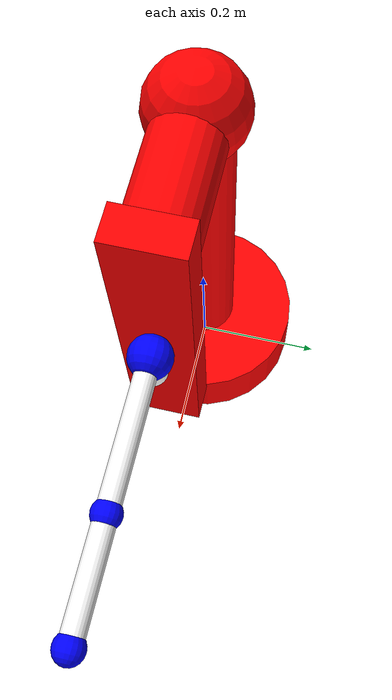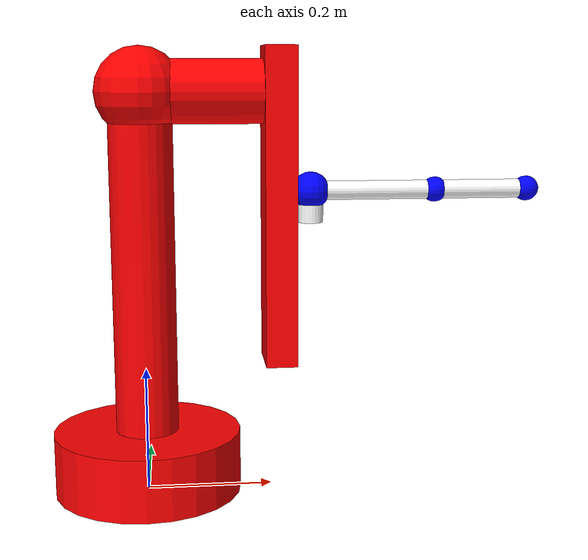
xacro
<?xml version="1.0" ?>
<robot name="dog_leg" xmlns:xacro="http://www.ros.org/wiki/xacro">

    <!-- property of robot -->
    <xacro:property name="under_base_length" value="0.1"/>
    <xacro:property name="under_base_radius" value="0.15"/>

        <!-- property of robot -->
    <xacro:property name="link_1_length" value="0.6"/>
    <xacro:property name="link_1_radius" value="0.05"/>

        <!-- property of robot -->
    <xacro:property name="link_2_radius" value="0.07"/>

            <!-- property of robot -->
    <xacro:property name="link_3_length" value="0.2"/>
    <xacro:property name="link_3_radius" value="0.05"/>

                <!-- property of robot -->
    <xacro:property name="link_4_x" value="0.05"/>
    <xacro:property name="link_4_y" value="0.1"/>
    <xacro:property name="link_4_z" value="0.5"/>

                <!-- property of robot -->
    <xacro:property name="leg_base_length" value="0.05"/>
    <xacro:property name="leg_base_radius" value="0.02"/>

                    <!-- property of robot -->
    <xacro:property name="j_leg_01_radius" value="0.03"/>
    <xacro:property name="j_leg_02_radius" value="0.02"/>

    <xacro:property name="leg1_h" value="0.20"/>
    <xacro:property name="leg2_h" value="0.15"/>
    <xacro:property name="leg_r" value="0.015"/>
    <!-- something -->
    <xacro:property name = "effort" value = "300"/>
    <xacro:property name = "velocity" value = "0.5"/>
    <xacro:property name = "lower" value = "-3.14"/>
    <xacro:property name = "upper" value = "3.14"/>

    <link name="dummy">

    </link>
    <joint name="dummy_base" type = "fixed">
	    <parent link="dummy"/>
	    <child link = "under_base"/>

    </joint>
    <link name="under_base">
        <inertial>
            <origin xyz="0.0 0.0 0.0" rpy="0.0 0.0 0.0"/>
            <mass value="1"/>
            <inertia ixx="0.15" ixy="0.0" ixz="0.0" iyy="0.15" iyz="0.0" izz="0.125"/>
        </inertial>
        <visual name="visual">
            <origin xyz="0.0 0.0 ${under_base_length/2}" rpy="0.0 0.0 0.0"/>
            <geometry>
                <cylinder radius="${under_base_radius}" length="${under_base_length}"/>
            </geometry>
            <material name="">
                <color rgba="1.0 0.0 0.0 1.0"/>
            </material>
        </visual>
        <collision>
            <origin xyz="0.0 0.0 ${under_base_length/2}" rpy="0.0 0.0 0.0"/>
            <geometry>
                <cylinder radius="${under_base_radius}" length="${under_base_length}"/>
            </geometry>
        </collision>
    </link>
    <link name="link_1">
        <inertial>
            <origin xyz="0.0 0.0 0.0" rpy="0.0 0.0 0.0"/>
            <mass value="1"/>
            <inertia ixx="0.15" ixy="0.0" ixz="0.0" iyy="0.15" iyz="0.0" izz="0.125"/>
        </inertial>
        <visual name="visual">
            <origin xyz="0.0 0.0 0" rpy="0.0 0.0 0.0"/>
            <geometry>
                <cylinder radius="${link_1_radius}" length="${link_1_length}"/>
            </geometry>
            <material name="">
                <color rgba="1.0 0.0 0.0 1.0"/>
            </material>
        </visual>
        <collision>
            <origin xyz="0.0 0.0 0.0" rpy="0.0 0.0 0.0"/>
            <geometry>
                <cylinder radius="${link_1_radius}" length="${link_1_length}"/>
            </geometry>
        </collision>
    </link>

    <link name="link_2">
        <inertial>
            <origin xyz="0.0 0.0 0.0" rpy="0.0 0.0 0.0"/>
            <mass value="1"/>
            <inertia ixx="0.1" ixy="0.0" ixz="0.0" iyy="0.1" iyz="0.0" izz="0.1"/>
        </inertial>
        <visual name="">
            <origin xyz="0.0 0.0 0.0" rpy="0.0 0.0 0.0"/>
            <geometry>
            <sphere radius="${link_2_radius}"/>
            </geometry>
            <material name="">
                <color rgba="1.0 0.0 0.0 1.0"/>
            </material>
        </visual>
        <collision>
            <origin xyz="0.0 0.0 0.0" rpy="0.0 0.0 0.0"/>
            <geometry>
                <box size="0.0 0.0 0.0"/>
            </geometry>
        </collision>
    </link>

    <link name="link_3">
        <inertial>
            <origin xyz="0.0 0.0 0.0" rpy="0.0 0.0 0.0"/>
            <mass value="1"/>
            <inertia ixx="0.15" ixy="0.0" ixz="0.0" iyy="0.15" iyz="0.0" izz="0.125"/>
        </inertial>
        <visual name="">
            <origin xyz="0.0 0.0 0.0" rpy="0.0 0.0 0.0"/>
            <geometry>
                <cylinder radius="${link_3_radius}" length="${link_3_length}"/>
            </geometry>
            <material name="">1.0
                <color rgba="1.0 0.0 0.0 1.0"/>
            </material>
        </visual>
        <collision>
            <origin xyz="0.0 0.0 0.0" rpy="0.0 0.0 0.0"/>
            <geometry>
                <cylinder radius="${link_3_radius}" length="${link_3_length}"/>
            </geometry>
        </collision>
    </link>

    <link name="link_4">
        <inertial>
            <origin xyz="0.0 0.0 0.0" rpy="0.0 0.0 0.0"/>
            <mass value="0.0"/>
            <inertia ixx="0.166667" ixy="0.0" ixz="0.0" iyy="0.166667" iyz="0.0" izz="0.166667"/>
        </inertial>
        <visual name="">
            <origin xyz="0.0 0.0 0.0" rpy="0.0 0.0 0.0"/>
            <geometry>
                <box size="${link_4_x} ${link_4_y} ${link_4_z}"/>
            </geometry>
            <material name="">
                <color rgba="1.0 0.0 0.0 1.0"/>
            </material>
        </visual>
        <collision>
            <origin xyz="0.0 0.0 0.0" rpy="0.0 0.0 0.0"/>
            <geometry>
                <box size="${link_4_x} ${link_4_y} ${link_4_z}"/>
            </geometry>
        </collision>
    </link>

    <link name="leg_base">
        <inertial>
            <origin xyz="0.0 0.0 0.0" rpy="0.0 1.5707 0.0"/>
            <mass value="1.0"/>
            <inertia ixx="0.0" ixy="0.0" ixz="0.0" iyy="0.0" iyz="0.0" izz="0.0"/>
        </inertial>
        <visual name="">
            <origin xyz="0.0 0.0 0.0" rpy="0.0 1.5707 0.0"/>
            <geometry>
                <cylinder radius="${leg_base_radius}" length="${leg_base_length}"/>
            </geometry>
            <material name="">
                <color rgba="1.0 1.0 1.0 1.0"/>
            </material>
        </visual>
        <collision>
            <origin xyz="0.0 0.0 0.0" rpy="0.0 1.5707 0.0"/>
            <geometry>
                <cylinder radius="${leg_base_radius}" length="${leg_base_length}"/>
            </geometry>
        </collision>
    </link>

    <link name="j_leg_01">
        <inertial>
            <origin xyz="0.0 0.0 0.0" rpy="0.0 0.0 0.0"/>
            <mass value="0.0"/>
            <inertia ixx="0.0" ixy="0.0" ixz="0.0" iyy="0.0" iyz="0.0" izz="0.0"/>
        </inertial>
        <visual name="">
            <origin xyz="0.0 0.0 0.0" rpy="0.0 0.0 0.0"/>
            <geometry>
                <sphere radius="${j_leg_01_radius}"/>
            </geometry>
            <material name="">
                <color rgba="0.0 0.0 1.0 1.0"/>
            </material>
        </visual>
        <collision>
            <origin xyz="0.0 0.0 0.0" rpy="0.0 0.0 0.0"/>
            <geometry>
                <sphere radius="0.02"/>
            </geometry>
        </collision>
    </link>

    <link name="leg1">
        <inertial>
            <origin xyz="0.0 0.0 0.0" rpy="0.0 0.0 0.0"/>
            <mass value="0.0"/>
            <inertia ixx="0.0" ixy="0.0" ixz="0.0" iyy="0.0" iyz="0.0" izz="0.0"/>
        </inertial>
        <visual name="">
            <origin xyz="0.0 0.0 0.0" rpy="0.0 0.0 0.0"/>
            <geometry>
                <cylinder radius="${leg_r}" length="${leg1_h}"/>
            </geometry>
            <material name="">
                <color rgba="1.0 1.0 1.0 1.0"/>
            </material>
        </visual>
        <collision>
            <origin xyz="0.0 0.0 0.0" rpy="0.0 0.0 0.0"/>
            <geometry>
                <cylinder radius="${leg_r}" length="${leg1_h}"/>
            </geometry>
        </collision>
    </link>

    <link name="j_leg_02">
        <inertial>
            <origin xyz="0.0 0.0 0.0" rpy="0.0 0.0 0.0"/>
            <mass value="0.0"/>
            <inertia ixx="0.0" ixy="0.0" ixz="0.0" iyy="0.0" iyz="0.0" izz="0.0"/>
        </inertial>
        <visual name="">
            <origin xyz="0.0 0.0 0.0" rpy="0.0 0.0 0.0"/>
            <geometry>
                <sphere radius="${j_leg_02_radius}"/>
            </geometry>
            <material name="">
                <color rgba="0.0 0.0 1.0 1.0"/>
            </material>
        </visual>
        <collision>
            <origin xyz="0.0 0.0 0.0" rpy="0.0 0.0 0.0"/>
            <geometry>
                <sphere radius="${j_leg_02_radius}"/>
            </geometry>
        </collision>
    </link>

    <link name="leg2">
        <inertial>
            <origin xyz="0.0 0.0 0.0" rpy="0.0 0.0 0.0"/>
            <mass value="0.0"/>
            <inertia ixx="0.0" ixy="0.0" ixz="0.0" iyy="0.0" iyz="0.0" izz="0.0"/>
        </inertial>
        <visual name="">
            <origin xyz="0.0 0.0 0.0" rpy="0.0 0.0 0.0"/>
            <geometry>
                <cylinder radius="${leg_r}" length="${leg2_h}"/>
            </geometry>
            <material name="">
                <color rgba="1.0 1.0 1.0 1.0"/>
            </material>
        </visual>
        <collision>
            <origin xyz="0.0 0.0 0.0" rpy="0.0 0.0 0.0"/>
            <geometry>
                <cylinder radius="${leg_r}" length="${leg2_h}"/>
            </geometry>
        </collision>
    </link>

    <link name="ball">
        <inertial>
            <origin xyz="0.0 0.0 0.0" rpy="0.0 0.0 0.0"/>
            <mass value="0.0"/>
            <inertia ixx="0.0" ixy="0.0" ixz="0.0" iyy="0.0" iyz="0.0" izz="0.0"/>
        </inertial>
        <visual name="">
            <origin xyz="0.0 0.0 0.0" rpy="0.0 0.0 0.0"/>
            <geometry>
                <sphere radius="0.02"/>
            </geometry>
            <material name="">
                <color rgba="0.0 0.0 1.0 1.0"/>
                <texture filename=""/>
            </material>
        </visual>
        <collision>
            <origin xyz="0.0 0.0 0.0" rpy="0.0 0.0 0.0"/>
            <geometry>
                <sphere radius="0.02"/>
            </geometry>
        </collision>
    </link>

    <joint name="under_base_to_link_1" type="fixed">
        <origin xyz="0.0 0.0 ${(under_base_length + link_1_length)/2}" rpy="0.0 0.0 0.0"/>
        <parent link="under_base"/>
        <child link="link_1"/>
        <axis xyz="0.0 0.0 0.0"/>
    </joint>

    <joint name="link_1_to_link_2" type="fixed">
        <origin xyz="0.0 0.0 ${(link_1_length)/2 -0.01}" rpy="0.0 0.0 0.0"/>
        <parent link="link_1"/>
        <child link="link_2"/>
        <axis xyz="0.0 0.0 0.0"/>
    </joint>

    <joint name="link_2_to_link_3" type="fixed">
        <origin xyz="${link_3_length/2 - 0.01} 0.0 0.0" rpy="0.0 1.5707 0.0"/>
        <parent link="link_2"/>
        <child link="link_3"/>
        <axis xyz="0.0 0.0 0.0"/>
    </joint>

    <joint name="link_3_to_link_4" type="fixed">
        <origin xyz="0.18 0.0 ${(link_3_length + link_4_x)/2}" rpy="0.0 -1.5707 0.0"/>
        <parent link="link_3"/>
        <child link="link_4"/>
        <axis xyz="0.0 0.0 0.0"/>
    </joint>
<!-- here we do it again -->
    <joint name="link_4_to_leg_base" type="continuous"> <!--  i want to use ....-->
        <origin xyz="${(leg_base_length + link_4_x)/2} 0.0 0.0" rpy="0.0 -1.5707 0.0"/>
        <parent link="link_4"/>
        <child link="leg_base"/>
        <axis xyz="0.0 1.0 0.0"/>
        <limit lower="${lower}" upper="${upper}" effort="${effort}" velocity="${velocity}"/>
    </joint>

    <joint name="j_leg_01_to_leg_base" type="continuous">
        <origin xyz="${leg_base_length/2} 0.0 0.0" rpy="0.0 0.0 0.0"/>
        <parent link="leg_base"/>
        <child link="j_leg_01"/>
        <limit lower="${lower}" upper="${upper}" effort="${effort}" velocity="${velocity}"/>
    </joint>

    <joint name="leg1_to_j_leg_01" type="fixed">
        <origin xyz="0.0 0.0 ${-(leg1_h/2)}" rpy="0.0 0.0 0.0"/>
        <parent link="j_leg_01"/>
        <child link="leg1"/>
    </joint>

    <joint name="j_leg_02_to_leg1" type="continuous">
        <origin xyz="0.0 0.0 ${-(leg1_h/2)}" rpy="0.0 0.0 0.0"/>
        <parent link="leg1"/>
        <child link="j_leg_02"/>
        <limit lower="${lower}" upper="${upper}" effort="${effort}" velocity="${velocity}"/>
    </joint>

    <joint name="leg2_to_j_leg_02" type="fixed">
        <origin xyz="0.0 0.0 ${-(leg2_h/2)}" rpy="0.0 0.0 0.0"/>
        <parent link="j_leg_02"/>
        <child link="leg2"/>
    </joint>

    <joint name="ball_to_leg2" type="fixed">
        <origin xyz="0.0 0.0 ${-(leg2_h/2)}" rpy="0.0 0.0 0.0"/>
        <parent link="leg2"/>
        <child link="ball"/>
    </joint>
</robot>
